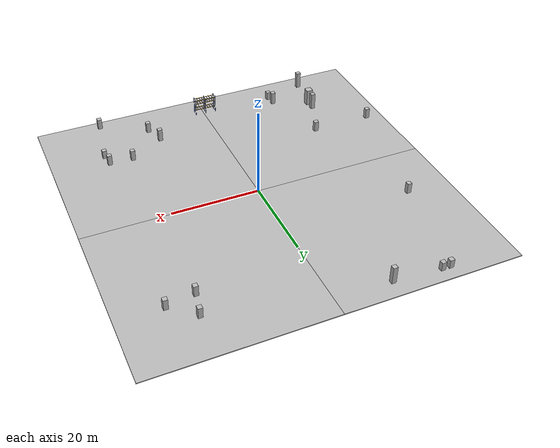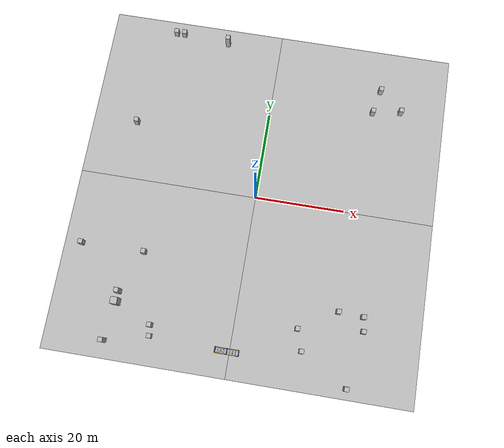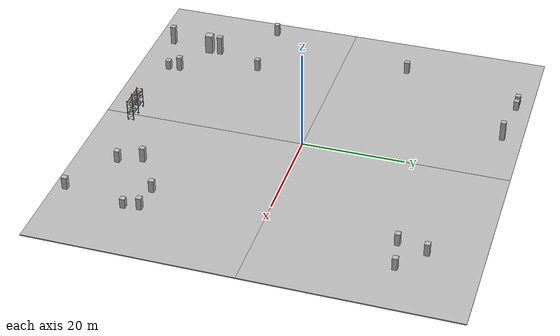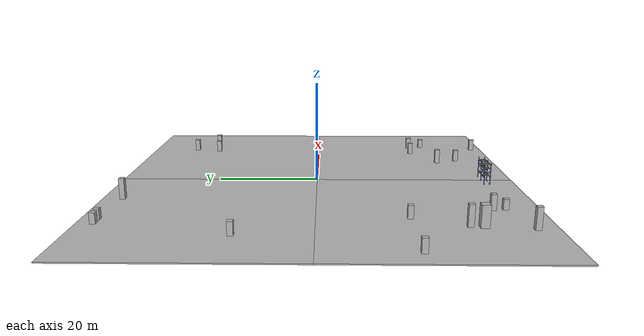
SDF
<?xml version="1.0" ?>
<sdf version="1.4">
  <world name="default">
    <include>
      <uri>model://sun</uri>
    </include>
    <!-- Only one ROS interface plugin is required per world, as any other plugin can connect a Gazebo
         topic to a ROS topic (or vise versa). -->
    <plugin name="ros_interface_plugin" filename="librotors_gazebo_ros_interface_plugin.so"/>

    <model name='gd1'>
      <static>1</static>
      <link name='chassis'>
        <pose frame=''>20 20 -0.1 0 0 0</pose>
        <collision name='collision'>
          <geometry>
            <box>
              <size>40 40 0.2</size>
            </box>
          </geometry>
          <max_contacts>10</max_contacts>
        </collision>
        <visual name='visual'>
          <geometry>
            <mesh>
              <uri>model://ground_surface/meshes/simple_box.dae</uri>
              <scale>40 40 0.2</scale>
            </mesh>
          </geometry>
          <material>
            <script>
              <uri>model://ground_surface/materials/scripts</uri>
              <uri>model://ground_surface/materials/textures</uri>
              <name>BrickBox/Ground</name>
            </script>
          </material>
        </visual>
        <self_collide>0</self_collide>
        <kinematic>0</kinematic>
      </link>
    </model>

    <model name='gd2'>
      <static>1</static>
      <link name='chassis'>
        <pose frame=''>20 -20 -0.1 0 0 0</pose>
        <collision name='collision'>
          <geometry>
            <box>
              <size>40 40 0.2</size>
            </box>
          </geometry>
          <max_contacts>10</max_contacts>
        </collision>
        <visual name='visual'>
          <geometry>
            <mesh>
              <uri>model://ground_surface/meshes/simple_box.dae</uri>
              <scale>40 40 0.2</scale>
            </mesh>
          </geometry>
          <material>
            <script>
              <uri>model://ground_surface/materials/scripts</uri>
              <uri>model://ground_surface/materials/textures</uri>
              <name>BrickBox/Ground</name>
            </script>
          </material>
        </visual>
        <self_collide>0</self_collide>
        <kinematic>0</kinematic>
      </link>
    </model>

    <model name='gd3'>
      <static>1</static>
      <link name='chassis'>
        <pose frame=''>-20 20 -0.1 0 0 0</pose>
        <collision name='collision'>
          <geometry>
            <box>
              <size>40 40 0.2</size>
            </box>
          </geometry>
          <max_contacts>10</max_contacts>
        </collision>
        <visual name='visual'>
          <geometry>
            <mesh>
              <uri>model://ground_surface/meshes/simple_box.dae</uri>
              <scale>40 40 0.2</scale>
            </mesh>
          </geometry>
          <material>
            <script>
              <uri>model://ground_surface/materials/scripts</uri>
              <uri>model://ground_surface/materials/textures</uri>
              <name>BrickBox/Ground</name>
            </script>
          </material>
        </visual>
        <self_collide>0</self_collide>
        <kinematic>0</kinematic>
      </link>
    </model>

    <model name='gd4'>
      <static>1</static>
      <link name='chassis'>
        <pose frame=''>-20 -20 -0.1 0 0 0</pose>
        <collision name='collision'>
          <geometry>
            <box>
              <size>40 40 0.2</size>
            </box>
          </geometry>
          <max_contacts>10</max_contacts>
        </collision>
        <visual name='visual'>
          <geometry>
            <mesh>
              <uri>model://ground_surface/meshes/simple_box.dae</uri>
              <scale>40 40 0.2</scale>
            </mesh>
          </geometry>
          <material>
            <script>
              <uri>model://ground_surface/materials/scripts</uri>
              <uri>model://ground_surface/materials/textures</uri>
              <name>BrickBox/Ground</name>
            </script>
          </material>
        </visual>
        <self_collide>0</self_collide>
        <kinematic>0</kinematic>
      </link>
    </model>

    <model name='brick_box_2_2'>
      <static>1</static>
      <link name='chassis'>
        <pose frame=''>0 0 2 0 -0 0</pose>
        <collision name='collision'>
          <geometry>
            <box>
              <size>1 1 4</size>
            </box>
          </geometry>
          <max_contacts>10</max_contacts>
        </collision>
        <visual name='visual'>
          <geometry>
            <mesh>
              <uri>model://brick_box_2/meshes/simple_box.dae</uri>
              <scale>1 1 4</scale>
            </mesh>
          </geometry>
          <material>
            <script>
              <uri>model://brick_box_2/materials/scripts</uri>
              <uri>model://brick_box_2/materials/textures</uri>
              <name>BrickBox/Flower</name>
            </script>
          </material>
        </visual>
        <self_collide>0</self_collide>
        <kinematic>0</kinematic>
      </link>
      <pose frame=''>-12.48484 36.19184 0 0 -0 0</pose>
    </model>

    <model name='brick_box_1_2'>
      <static>1</static>
      <link name='chassis'>
        <pose frame=''>0 0 1.5 0 -0 0</pose>
        <collision name='collision'>
          <geometry>
            <box>
              <size>1 1 3</size>
            </box>
          </geometry>
          <max_contacts>10</max_contacts>
          <surface>
            <contact>
              <ode/>
            </contact>
            <bounce/>
            <friction>
              <torsional>
                <ode/>
              </torsional>
              <ode/>
            </friction>
          </surface>
        </collision>
        <visual name='visual'>
          <geometry>
            <mesh>
              <uri>model://brick_box_1/meshes/simple_box.dae</uri>
              <scale>1 1 3</scale>
            </mesh>
          </geometry>
          <material>
            <script>
              <uri>model://brick_box_1/materials/scripts</uri>
              <uri>model://brick_box_1/materials/textures</uri>
              <name>BrickBox/Diffuse</name>
            </script>
          </material>
        </visual>
        <self_collide>0</self_collide>
        <kinematic>0</kinematic>
      </link>
      <pose frame=''>13.51365 -27.18761 0 0 -0 0</pose>
    </model>

    <model name='brick_box_2_3'>
      <static>1</static>
      <link name='chassis'>
        <pose frame=''>0 0 2 0 -0 0</pose>
        <collision name='collision'>
          <geometry>
            <box>
              <size>1 1 4</size>
            </box>
          </geometry>
          <max_contacts>10</max_contacts>
          <surface>
            <contact>
              <ode/>
            </contact>
            <bounce/>
            <friction>
              <torsional>
                <ode/>
              </torsional>
              <ode/>
            </friction>
          </surface>
        </collision>
        <visual name='visual'>
          <geometry>
            <mesh>
              <uri>model://brick_box_2/meshes/simple_box.dae</uri>
              <scale>1 1 4</scale>
            </mesh>
          </geometry>
          <material>
            <script>
              <uri>model://brick_box_2/materials/scripts</uri>
              <uri>model://brick_box_2/materials/textures</uri>
              <name>BrickBox/Flower</name>
            </script>
          </material>
        </visual>
        <self_collide>0</self_collide>
        <kinematic>0</kinematic>
      </link>
      <pose frame=''>-26.83918 -36.1609 0 0 -0 0</pose>
    </model>

    <model name='brick_box_1_7'>
      <static>1</static>
      <link name='chassis'>
      <pose frame=''>-25.78765 -27.78958 2 0 -0 0</pose>
        <collision name='collision'>
          <geometry>
            <box>
              <size>1.5 1.5 4</size>
            </box>
          </geometry>
          <max_contacts>10</max_contacts>
        </collision>
        <visual name='visual'>
          <geometry>
            <mesh>
              <uri>model://brick_box_1/meshes/simple_box.dae</uri>
              <scale>1.5 1.5 4</scale>
            </mesh>
          </geometry>
          <material>
            <script>
              <uri>model://brick_box_1/materials/scripts</uri>
              <uri>model://brick_box_1/materials/textures</uri>
              <name>BrickBox/Diffuse</name>
            </script>
          </material>
        </visual>
        <self_collide>0</self_collide>
        <kinematic>0</kinematic>
      </link>

    </model>

    <model name='Shelves high'>
      <static>1</static>
      <link name='link'>
        <collision name='collision'>
          <geometry>
            <mesh>
              <uri>model://shelves_high/meshes/shelves_high_collision.dae</uri>
              <scale>1 1.2 1.2</scale>
            </mesh>
          </geometry>
          <max_contacts>10</max_contacts>
          <surface>
            <contact>
              <ode/>
            </contact>
            <bounce/>
            <friction>
              <torsional>
                <ode/>
              </torsional>
              <ode/>
            </friction>
          </surface>
        </collision>
        <visual name='visual'>
          <geometry>
            <mesh>
              <uri>model://shelves_high/meshes/shelves_high.dae</uri>
              <scale>1 1.2 1.2</scale>
            </mesh>
          </geometry>
        </visual>
        <self_collide>0</self_collide>
        <enable_wind>0</enable_wind>
        <kinematic>0</kinematic>
      </link>
      <pose frame=''>-0.465321 -33.6767 0 0 -0 0</pose>
    </model>

    <model name='brick_box_2_8'>
      <static>1</static>
      <link name='chassis'>
        <pose frame=''>0 0 1 0 -0 0</pose>
        <collision name='collision'>
          <geometry>
            <box>
              <size>1 1 2</size>
            </box>
          </geometry>
          <max_contacts>10</max_contacts>
        </collision>
        <visual name='visual'>
          <geometry>
            <mesh>
              <uri>model://brick_box_2/meshes/simple_box.dae</uri>
              <scale>1 1 2</scale>
            </mesh>
          </geometry>
          <material>
            <script>
              <uri>model://brick_box_2/materials/scripts</uri>
              <uri>model://brick_box_2/materials/textures</uri>
              <name>BrickBox/Flower</name>
            </script>
          </material>
        </visual>
        <self_collide>0</self_collide>
        <kinematic>0</kinematic>
      </link>
      <pose frame=''>27.48865 -25.51244 0 0 -0 0</pose>
    </model>
    <model name='brick_box_2_9'>
      <static>1</static>
      <link name='chassis'>
        <pose frame=''>0 0 2 0 -0 0</pose>
        <collision name='collision'>
          <geometry>
            <box>
              <size>1 1 4</size>
            </box>
          </geometry>
          <max_contacts>10</max_contacts>
        </collision>
        <visual name='visual'>
          <geometry>
            <mesh>
              <uri>model://brick_box_2/meshes/simple_box.dae</uri>
              <scale>1 1 4</scale>
            </mesh>
          </geometry>
          <material>
            <script>
              <uri>model://brick_box_2/materials/scripts</uri>
              <uri>model://brick_box_2/materials/textures</uri>
              <name>BrickBox/Flower</name>
            </script>
          </material>
        </visual>
        <self_collide>0</self_collide>
        <kinematic>0</kinematic>
      </link>
      <pose frame=''>-25.76183 -25.5229 0 0 -0 0</pose>
    </model>
    <model name='brick_box_2_10'>
      <static>1</static>
      <link name='chassis'>
        <pose frame=''>0 0 1 0 -0 0</pose>
        <collision name='collision'>
          <geometry>
            <box>
              <size>1 1 2</size>
            </box>
          </geometry>
          <max_contacts>10</max_contacts>
        </collision>
        <visual name='visual'>
          <geometry>
            <mesh>
              <uri>model://brick_box_2/meshes/simple_box.dae</uri>
              <scale>1 1 2</scale>
            </mesh>
          </geometry>
          <material>
            <script>
              <uri>model://brick_box_2/materials/scripts</uri>
              <uri>model://brick_box_2/materials/textures</uri>
              <name>BrickBox/Flower</name>
            </script>
          </material>
        </visual>
        <self_collide>0</self_collide>
        <kinematic>0</kinematic>
      </link>
      <pose frame=''>-23.17 37.00064 0 0 -0 0</pose>
    </model>

    <model name='brick_box_1_10'>
      <static>1</static>
      <link name='chassis'>
        <pose frame=''>0 0 1.5 0 -0 0</pose>
        <collision name='collision'>
          <geometry>
            <box>
              <size>1 1 3</size>
            </box>
          </geometry>
          <max_contacts>10</max_contacts>
        </collision>
        <visual name='visual'>
          <geometry>
            <mesh>
              <uri>model://brick_box_1/meshes/simple_box.dae</uri>
              <scale>1 1 3</scale>
            </mesh>
          </geometry>
          <material>
            <script>
              <uri>model://brick_box_1/materials/scripts</uri>
              <uri>model://brick_box_1/materials/textures</uri>
              <name>BrickBox/Diffuse</name>
            </script>
          </material>
        </visual>
        <self_collide>0</self_collide>
        <kinematic>0</kinematic>
      </link>
      <pose frame=''>-17.63241 -31.44559 0 0 -0 0</pose>
    </model>

    <model name='brick_box_1_11'>
      <static>1</static>
      <link name='chassis'>
        <pose frame=''>0 0 1 0 -0 0</pose>
        <collision name='collision'>
          <geometry>
            <box>
              <size>1 1 2</size>
            </box>
          </geometry>
          <max_contacts>10</max_contacts>
        </collision>
        <visual name='visual'>
          <geometry>
            <mesh>
              <uri>model://brick_box_1/meshes/simple_box.dae</uri>
              <scale>1 1 2</scale>
            </mesh>
          </geometry>
          <material>
            <script>
              <uri>model://brick_box_1/materials/scripts</uri>
              <uri>model://brick_box_1/materials/textures</uri>
              <name>BrickBox/Diffuse</name>
            </script>
          </material>
        </visual>
        <self_collide>0</self_collide>
        <kinematic>0</kinematic>
      </link>
      <pose frame=''>-25.03514 36.98118 0 0 -0 0</pose>
    </model>

    <model name='brick_box_2_14'>
      <static>1</static>
      <link name='chassis'>
        <pose frame=''>0 0 1 0 -0 0</pose>
        <collision name='collision'>
          <geometry>
            <box>
              <size>1 1 2</size>
            </box>
          </geometry>
          <max_contacts>10</max_contacts>
        </collision>
        <visual name='visual'>
          <geometry>
            <mesh>
              <uri>model://brick_box_2/meshes/simple_box.dae</uri>
              <scale>1 1 2</scale>
            </mesh>
          </geometry>
          <material>
            <script>
              <uri>model://brick_box_2/materials/scripts</uri>
              <uri>model://brick_box_2/materials/textures</uri>
              <name>BrickBox/Flower</name>
            </script>
          </material>
        </visual>
        <self_collide>0</self_collide>
        <kinematic>0</kinematic>
      </link>
      <pose frame=''>-17.35221 -33.7337 0 0 -0 0</pose>
    </model>

    <model name='brick_box_3_11'>
      <static>1</static>
      <link name='chassis'>
        <pose frame=''>0 0 0.5 0 -0 0</pose>
        <collision name='collision'>
          <geometry>
            <box>
              <size>1 1 4</size>
            </box>
          </geometry>
          <max_contacts>10</max_contacts>
          <surface>
            <contact>
              <ode/>
            </contact>
            <bounce/>
            <friction>
              <torsional>
                <ode/>
              </torsional>
              <ode/>
            </friction>
          </surface>
        </collision>
        <visual name='visual'>
          <geometry>
            <mesh>
              <uri>model://brick_box_3/meshes/simple_box.dae</uri>
              <scale>1 1 4</scale>
            </mesh>
          </geometry>
          <material>
            <script>
              <uri>model://brick_box_3/materials/scripts</uri>
              <uri>model://brick_box_3/materials/textures</uri>
              <name>BrickBox/Sea</name>
            </script>
          </material>
        </visual>
        <self_collide>0</self_collide>
        <enable_wind>0</enable_wind>
        <kinematic>0</kinematic>
      </link>
      <pose frame=''>-22.09803 -16.1947 0 0 -0 0</pose>
    </model>

    <model name='brick_box_3_15'>
      <static>1</static>
      <link name='chassis'>
        <pose frame=''>0 0 0.5 0 -0 0</pose>
        <collision name='collision'>
          <geometry>
            <box>
              <size>1 1 4</size>
            </box>
          </geometry>
          <max_contacts>10</max_contacts>
          <surface>
            <contact>
              <ode/>
            </contact>
            <bounce/>
            <friction>
              <torsional>
                <ode/>
              </torsional>
              <ode/>
            </friction>
          </surface>
        </collision>
        <visual name='visual'>
          <geometry>
            <mesh>
              <uri>model://brick_box_3/meshes/simple_box.dae</uri>
              <scale>1 1 4</scale>
            </mesh>
          </geometry>
          <material>
            <script>
              <uri>model://brick_box_3/materials/scripts</uri>
              <uri>model://brick_box_3/materials/textures</uri>
              <name>BrickBox/Sea</name>
            </script>
          </material>
        </visual>
        <self_collide>0</self_collide>
        <enable_wind>0</enable_wind>
        <kinematic>0</kinematic>
      </link>
      <pose frame=''>15.0215 -31.69596 0 0 -0 0</pose>
    </model>

    <model name='brick_box_3_16'>
      <static>1</static>
      <link name='chassis'>
        <pose frame=''>0 0 0.5 0 -0 0</pose>
        <collision name='collision'>
          <geometry>
            <box>
              <size>1 1 4</size>
            </box>
          </geometry>
          <max_contacts>10</max_contacts>
          <surface>
            <contact>
              <ode/>
            </contact>
            <bounce/>
            <friction>
              <torsional>
                <ode/>
              </torsional>
              <ode/>
            </friction>
          </surface>
        </collision>
        <visual name='visual'>
          <geometry>
            <mesh>
              <uri>model://brick_box_3/meshes/simple_box.dae</uri>
              <scale>1 1 4</scale>
            </mesh>
          </geometry>
          <material>
            <script>
              <uri>model://brick_box_3/materials/scripts</uri>
              <uri>model://brick_box_3/materials/textures</uri>
              <name>BrickBox/Sea</name>
            </script>
          </material>
        </visual>
        <self_collide>0</self_collide>
        <enable_wind>0</enable_wind>
        <kinematic>0</kinematic>
      </link>
      <pose frame=''>25.322 -37.7631 0 0 -0 0</pose>
    </model>
    <model name='brick_box_3_17'>
      <static>1</static>
      <link name='chassis'>
        <pose frame=''>0 0 0.5 0 -0 0</pose>
        <collision name='collision'>
          <geometry>
            <box>
              <size>1 1 4</size>
            </box>
          </geometry>
          <max_contacts>10</max_contacts>
          <surface>
            <contact>
              <ode/>
            </contact>
            <bounce/>
            <friction>
              <torsional>
                <ode/>
              </torsional>
              <ode/>
            </friction>
          </surface>
        </collision>
        <visual name='visual'>
          <geometry>
            <mesh>
              <uri>model://brick_box_3/meshes/simple_box.dae</uri>
              <scale>1 1 4</scale>
            </mesh>
          </geometry>
          <material>
            <script>
              <uri>model://brick_box_3/materials/scripts</uri>
              <uri>model://brick_box_3/materials/textures</uri>
              <name>BrickBox/Sea</name>
            </script>
          </material>
        </visual>
        <self_collide>0</self_collide>
        <enable_wind>0</enable_wind>
        <kinematic>0</kinematic>
      </link>
      <pose frame=''>23.47314 24.3082 0 0 -0 0</pose>
    </model>

    <model name='brick_box_2_22'>
      <static>1</static>
      <link name='chassis'>
        <pose frame=''>0 0 0.5 0 -0 0</pose>
        <collision name='collision'>
          <geometry>
            <box>
              <size>1 1 4</size>
            </box>
          </geometry>
          <max_contacts>10</max_contacts>
          <surface>
            <contact>
              <ode/>
            </contact>
            <bounce/>
            <friction>
              <torsional>
                <ode/>
              </torsional>
              <ode/>
            </friction>
          </surface>
        </collision>
        <visual name='visual'>
          <geometry>
            <mesh>
              <uri>model://brick_box_2/meshes/simple_box.dae</uri>
              <scale>1 1 4</scale>
            </mesh>
          </geometry>
          <material>
            <script>
              <uri>model://brick_box_2/materials/scripts</uri>
              <uri>model://brick_box_2/materials/textures</uri>
              <name>BrickBox/Flower</name>
            </script>
          </material>
        </visual>
        <self_collide>0</self_collide>
        <enable_wind>0</enable_wind>
        <kinematic>0</kinematic>
      </link>
      <pose frame=''>24.6741 29.86596 0 0 -0 0</pose>
    </model>
    <model name='brick_box_2_23'>
      <static>1</static>
      <link name='chassis'>
        <pose frame=''>0 0 0.5 0 -0 0</pose>
        <collision name='collision'>
          <geometry>
            <box>
              <size>1 1 4</size>
            </box>
          </geometry>
          <max_contacts>10</max_contacts>
          <surface>
            <contact>
              <ode/>
            </contact>
            <bounce/>
            <friction>
              <torsional>
                <ode/>
              </torsional>
              <ode/>
            </friction>
          </surface>
        </collision>
        <visual name='visual'>
          <geometry>
            <mesh>
              <uri>model://brick_box_2/meshes/simple_box.dae</uri>
              <scale>1 1 4</scale>
            </mesh>
          </geometry>
          <material>
            <script>
              <uri>model://brick_box_2/materials/scripts</uri>
              <uri>model://brick_box_2/materials/textures</uri>
              <name>BrickBox/Flower</name>
            </script>
          </material>
        </visual>
        <self_collide>0</self_collide>
        <enable_wind>0</enable_wind>
        <kinematic>0</kinematic>
      </link>
      <pose frame=''>-29.82988 13.3422 0 0 -0 0</pose>
    </model>

    <model name='brick_box_2_17'>
      <static>1</static>
      <link name='chassis'>
        <pose frame=''>0 0 0.5 0 -0 0</pose>
        <collision name='collision'>
          <geometry>
            <box>
              <size>1 1 4</size>
            </box>
          </geometry>
          <max_contacts>10</max_contacts>
          <surface>
            <contact>
              <ode/>
            </contact>
            <bounce/>
            <friction>
              <torsional>
                <ode/>
              </torsional>
              <ode/>
            </friction>
          </surface>
        </collision>
        <visual name='visual'>
          <geometry>
            <mesh>
              <uri>model://brick_box_2/meshes/simple_box.dae</uri>
              <scale>1 1 4</scale>
            </mesh>
          </geometry>
          <material>
            <script>
              <uri>model://brick_box_2/materials/scripts</uri>
              <uri>model://brick_box_2/materials/textures</uri>
              <name>BrickBox/Flower</name>
            </script>
          </material>
        </visual>
        <self_collide>0</self_collide>
        <enable_wind>0</enable_wind>
        <kinematic>0</kinematic>
      </link>
      <pose frame=''>21.7021 -22.2192 0 0 -0 0</pose>
    </model>
    <model name='brick_box_2_18'>
      <static>1</static>
      <link name='chassis'>
        <pose frame=''>0 0 0.5 0 -0 0</pose>
        <collision name='collision'>
          <geometry>
            <box>
              <size>1 1 4</size>
            </box>
          </geometry>
          <max_contacts>10</max_contacts>
          <surface>
            <contact>
              <ode/>
            </contact>
            <bounce/>
            <friction>
              <torsional>
                <ode/>
              </torsional>
              <ode/>
            </friction>
          </surface>
        </collision>
        <visual name='visual'>
          <geometry>
            <mesh>
              <uri>model://brick_box_2/meshes/simple_box.dae</uri>
              <scale>1 1 4</scale>
            </mesh>
          </geometry>
          <material>
            <script>
              <uri>model://brick_box_2/materials/scripts</uri>
              <uri>model://brick_box_2/materials/textures</uri>
              <name>BrickBox/Flower</name>
            </script>
          </material>
        </visual>
        <self_collide>0</self_collide>
        <enable_wind>0</enable_wind>
        <kinematic>0</kinematic>
      </link>
      <pose frame=''>29.87253 25.4132 0 0 -0 0</pose>
    </model>

    <model name='brick_box_1_14'>
      <static>1</static>
      <link name='chassis'>
        <pose frame=''>0 0 0.5 0 -0 0</pose>
        <collision name='collision'>
          <geometry>
            <box>
              <size>1 1 4</size>
            </box>
          </geometry>
          <max_contacts>10</max_contacts>
          <surface>
            <contact>
              <ode/>
            </contact>
            <bounce/>
            <friction>
              <torsional>
                <ode/>
              </torsional>
              <ode/>
            </friction>
          </surface>
        </collision>
        <visual name='visual'>
          <geometry>
            <mesh>
              <uri>model://brick_box_1/meshes/simple_box.dae</uri>
              <scale>1 1 4</scale>
            </mesh>
          </geometry>
          <material>
            <script>
              <uri>model://brick_box_1/materials/scripts</uri>
              <uri>model://brick_box_1/materials/textures</uri>
              <name>BrickBox/Diffuse</name>
            </script>
          </material>
        </visual>
        <self_collide>0</self_collide>
        <enable_wind>0</enable_wind>
        <kinematic>0</kinematic>
      </link>
      <pose frame=''>27.0815 -22.49662 0 0 -0 0</pose>
    </model>

    <model name='brick_box_2_25'>
      <static>1</static>
      <link name='chassis'>
        <pose frame=''>0 0 0.5 0 -0 0</pose>
        <collision name='collision'>
          <geometry>
            <box>
              <size>1 1 4</size>
            </box>
          </geometry>
          <max_contacts>10</max_contacts>
          <surface>
            <contact>
              <ode/>
            </contact>
            <bounce/>
            <friction>
              <torsional>
                <ode/>
              </torsional>
              <ode/>
            </friction>
          </surface>
        </collision>
        <visual name='visual'>
          <geometry>
            <mesh>
              <uri>model://brick_box_2/meshes/simple_box.dae</uri>
              <scale>1 1 4</scale>
            </mesh>
          </geometry>
          <material>
            <script>
              <uri>model://brick_box_2/materials/scripts</uri>
              <uri>model://brick_box_2/materials/textures</uri>
              <name>BrickBox/Flower</name>
            </script>
          </material>
        </visual>
        <self_collide>0</self_collide>
        <enable_wind>0</enable_wind>
        <kinematic>0</kinematic>
      </link>
      <pose frame=''>-36.073 -16.3131 0 0 -0 0</pose>
    </model>

    <gui fullscreen='0'>
      <camera name='user_camera'>
        <pose>-15.7188 -11.5112 32.605 0 1.0778 0.672</pose>
        <view_controller>orbit</view_controller>
        <projection_type>perspective</projection_type>
      </camera>
    </gui>

    <spherical_coordinates>
      <surface_model>EARTH_WGS84</surface_model>
      <latitude_deg>47.3667</latitude_deg>
      <longitude_deg>8.5500</longitude_deg>
      <elevation>500.0</elevation>
      <heading_deg>0</heading_deg>
    </spherical_coordinates>

    <physics type='ode'>
      <ode>
        <solver>
          <type>quick</type>
          <iters>1000</iters>
          <sor>1.3</sor>
        </solver>
        <constraints>
          <cfm>0</cfm>
          <erp>0.2</erp>
          <contact_max_correcting_vel>100</contact_max_correcting_vel>
          <contact_surface_layer>0.001</contact_surface_layer>
        </constraints>
      </ode>
      <max_step_size>0.01</max_step_size>
      <real_time_factor>1</real_time_factor>
      <real_time_update_rate>100</real_time_update_rate>
      <gravity>0 0 -9.8</gravity>
    </physics>
  </world>
</sdf>
